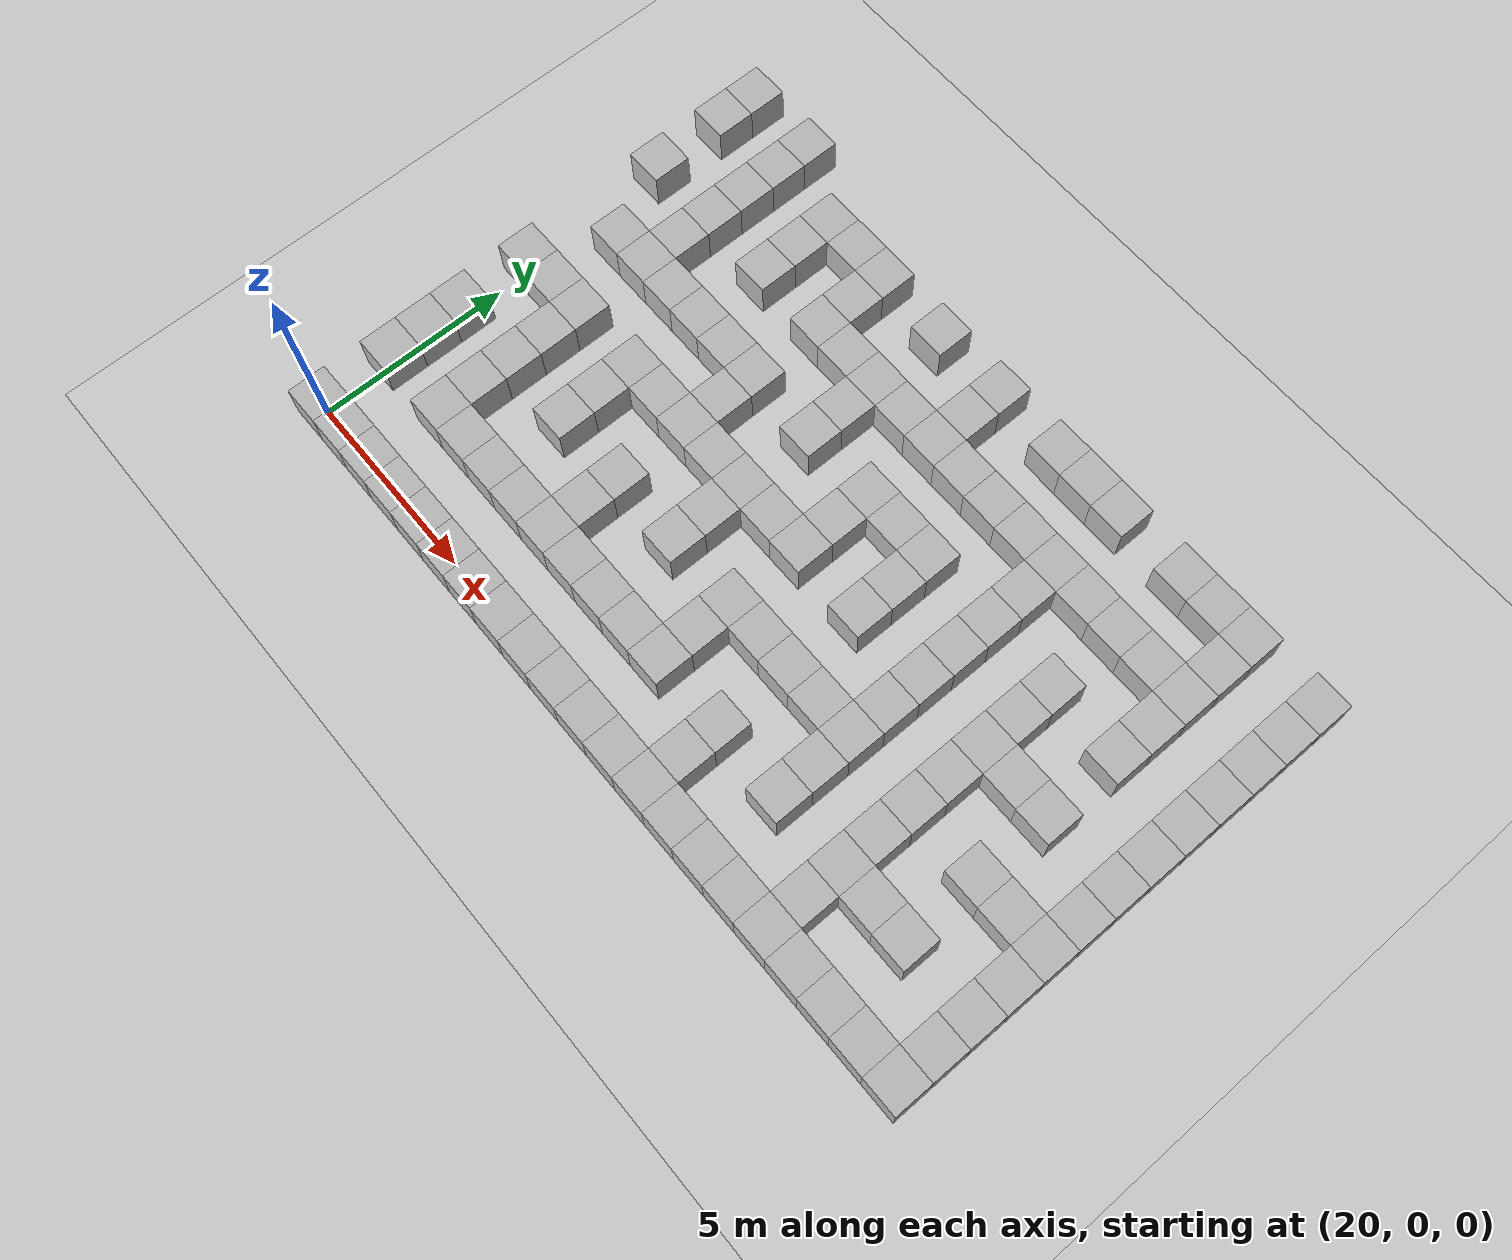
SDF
<sdf version="1.8">
 <world name="custom_maze">
  <model name="ground_plane">
   <static>1</static>
   <link name="link">
    <collision name="collision">
     <geometry><plane><normal>0 0 1</normal><size>100 100</size></plane></geometry>
    </collision>
    <visual name="visual">
     <geometry><plane><normal>0 0 1</normal><size>100 100</size></plane></geometry>
     <material>
      <ambient>0.8 0.8 0.8 1</ambient>
      <diffuse>0.8 0.8 0.8 1</diffuse>
      <specular>0.8 0.8 0.8 1</specular>
     </material>
     <plugin name="__default__" filename="__default__"/>
    </visual>
   </link>
   <plugin name="__default__" filename="__default__"/>
  </model>
  <model name="obstacles">
   <pose>0 0 0.5 0 0 0</pose>
   <static>true</static>
   <link name="wall6">
    <pose>34 3 0 0 0 0</pose>
    <static>true</static>
    <collision name="wall6_collision"><geometry><box><size>1 1 1</size></box></geometry></collision>
    <visual name="wall6_visual"><geometry><box><size>1 1 1</size></box></geometry></visual>
   </link>
   <link name="wall10">
    <pose>38 9 0 0 0 0</pose>
    <static>true</static>
    <collision name="wall10_collision"><geometry><box><size>1 1 1</size></box></geometry></collision>
    <visual name="wall10_visual"><geometry><box><size>1 1 1</size></box></geometry></visual>
   </link>
   <link name="wall12">
    <pose>30 4 0 0 0 0</pose>
    <static>true</static>
    <collision name="wall12_collision"><geometry><box><size>1 1 1</size></box></geometry></collision>
    <visual name="wall12_visual"><geometry><box><size>1 1 1</size></box></geometry></visual>
   </link>
   <link name="wall15">
    <pose>22 5 0 0 0 0</pose>
    <static>true</static>
    <collision name="wall15_collision"><geometry><box><size>1 1 1</size></box></geometry></collision>
    <visual name="wall15_visual"><geometry><box><size>1 1 1</size></box></geometry></visual>
   </link>
   <link name="wall19">
    <pose>26 11 0 0 0 0</pose>
    <static>true</static>
    <collision name="wall19_collision"><geometry><box><size>1 1 1</size></box></geometry></collision>
    <visual name="wall19_visual"><geometry><box><size>1 1 1</size></box></geometry></visual>
   </link>
   <link name="wall34">
    <pose>40 8 0 0 0 0</pose>
    <static>true</static>
    <collision name="wall34_collision"><geometry><box><size>1 1 1</size></box></geometry></collision>
    <visual name="wall34_visual"><geometry><box><size>1 1 1</size></box></geometry></visual>
   </link>
   <link name="wall36">
    <pose>34 6 0 0 0 0</pose>
    <static>true</static>
    <collision name="wall36_collision"><geometry><box><size>1 1 1</size></box></geometry></collision>
    <visual name="wall36_visual"><geometry><box><size>1 1 1</size></box></geometry></visual>
   </link>
   <link name="wall41">
    <pose>21 8 0 0 0 0</pose>
    <static>true</static>
    <collision name="wall41_collision"><geometry><box><size>1 1 1</size></box></geometry></collision>
    <visual name="wall41_visual"><geometry><box><size>1 1 1</size></box></geometry></visual>
   </link>
   <link name="wall48">
    <pose>22 8 0 0 0 0</pose>
    <static>true</static>
    <collision name="wall48_collision"><geometry><box><size>1 1 1</size></box></geometry></collision>
    <visual name="wall48_visual"><geometry><box><size>1 1 1</size></box></geometry></visual>
   </link>
   <link name="wall59">
    <pose>36 5 0 0 0 0</pose>
    <static>true</static>
    <collision name="wall59_collision"><geometry><box><size>1 1 1</size></box></geometry></collision>
    <visual name="wall59_visual"><geometry><box><size>1 1 1</size></box></geometry></visual>
   </link>
   <link name="wall61">
    <pose>29 2 0 0 0 0</pose>
    <static>true</static>
    <collision name="wall61_collision"><geometry><box><size>1 1 1</size></box></geometry></collision>
    <visual name="wall61_visual"><geometry><box><size>1 1 1</size></box></geometry></visual>
   </link>
   <link name="wall62">
    <pose>40 11 0 0 0 0</pose>
    <static>true</static>
    <collision name="wall62_collision"><geometry><box><size>1 1 1</size></box></geometry></collision>
    <visual name="wall62_visual"><geometry><box><size>1 1 1</size></box></geometry></visual>
   </link>
   <link name="wall67">
    <pose>32 12 0 0 0 0</pose>
    <static>true</static>
    <collision name="wall67_collision"><geometry><box><size>1 1 1</size></box></geometry></collision>
    <visual name="wall67_visual"><geometry><box><size>1 1 1</size></box></geometry></visual>
   </link>
   <link name="wall68">
    <pose>24 8 0 0 0 0</pose>
    <static>true</static>
    <collision name="wall68_collision"><geometry><box><size>1 1 1</size></box></geometry></collision>
    <visual name="wall68_visual"><geometry><box><size>1 1 1</size></box></geometry></visual>
   </link>
   <link name="wall82">
    <pose>32 2 0 0 0 0</pose>
    <static>true</static>
    <collision name="wall82_collision"><geometry><box><size>1 1 1</size></box></geometry></collision>
    <visual name="wall82_visual"><geometry><box><size>1 1 1</size></box></geometry></visual>
   </link>
   <link name="wall84">
    <pose>28 4 0 0 0 0</pose>
    <static>true</static>
    <collision name="wall84_collision"><geometry><box><size>1 1 1</size></box></geometry></collision>
    <visual name="wall84_visual"><geometry><box><size>1 1 1</size></box></geometry></visual>
   </link>
   <link name="wall92">
    <pose>24 11 0 0 0 0</pose>
    <static>true</static>
    <collision name="wall92_collision"><geometry><box><size>1 1 1</size></box></geometry></collision>
    <visual name="wall92_visual"><geometry><box><size>1 1 1</size></box></geometry></visual>
   </link>
   <link name="wall103">
    <pose>38 8 0 0 0 0</pose>
    <static>true</static>
    <collision name="wall103_collision"><geometry><box><size>1 1 1</size></box></geometry></collision>
    <visual name="wall103_visual"><geometry><box><size>1 1 1</size></box></geometry></visual>
   </link>
   <link name="wall104">
    <pose>30 3 0 0 0 0</pose>
    <static>true</static>
    <collision name="wall104_collision"><geometry><box><size>1 1 1</size></box></geometry></collision>
    <visual name="wall104_visual"><geometry><box><size>1 1 1</size></box></geometry></visual>
   </link>
   <link name="wall108">
    <pose>31 4 0 0 0 0</pose>
    <static>true</static>
    <collision name="wall108_collision"><geometry><box><size>1 1 1</size></box></geometry></collision>
    <visual name="wall108_visual"><geometry><box><size>1 1 1</size></box></geometry></visual>
   </link>
   <link name="wall109">
    <pose>23 0 0 0 0 0</pose>
    <static>true</static>
    <collision name="wall109_collision"><geometry><box><size>1 1 1</size></box></geometry></collision>
    <visual name="wall109_visual"><geometry><box><size>1 1 1</size></box></geometry></visual>
   </link>
   <link name="wall112">
    <pose>26 10 0 0 0 0</pose>
    <static>true</static>
    <collision name="wall112_collision"><geometry><box><size>1 1 1</size></box></geometry></collision>
    <visual name="wall112_visual"><geometry><box><size>1 1 1</size></box></geometry></visual>
   </link>
   <link name="wall125">
    <pose>34 5 0 0 0 0</pose>
    <static>true</static>
    <collision name="wall125_collision"><geometry><box><size>1 1 1</size></box></geometry></collision>
    <visual name="wall125_visual"><geometry><box><size>1 1 1</size></box></geometry></visual>
   </link>
   <link name="wall127">
    <pose>37 10 0 0 0 0</pose>
    <static>true</static>
    <collision name="wall127_collision"><geometry><box><size>1 1 1</size></box></geometry></collision>
    <visual name="wall127_visual"><geometry><box><size>1 1 1</size></box></geometry></visual>
   </link>
   <link name="wall130">
    <pose>26 0 0 0 0 0</pose>
    <static>true</static>
    <collision name="wall130_collision"><geometry><box><size>1 1 1</size></box></geometry></collision>
    <visual name="wall130_visual"><geometry><box><size>1 1 1</size></box></geometry></visual>
   </link>
   <link name="wall131">
    <pose>38 11 0 0 0 0</pose>
    <static>true</static>
    <collision name="wall131_collision"><geometry><box><size>1 1 1</size></box></geometry></collision>
    <visual name="wall131_visual"><geometry><box><size>1 1 1</size></box></geometry></visual>
   </link>
   <link name="wall133">
    <pose>30 6 0 0 0 0</pose>
    <static>true</static>
    <collision name="wall133_collision"><geometry><box><size>1 1 1</size></box></geometry></collision>
    <visual name="wall133_visual"><geometry><box><size>1 1 1</size></box></geometry></visual>
   </link>
   <link name="wall145">
    <pose>37 0 0 0 0 0</pose>
    <static>true</static>
    <collision name="wall145_collision"><geometry><box><size>1 1 1</size></box></geometry></collision>
    <visual name="wall145_visual"><geometry><box><size>1 1 1</size></box></geometry></visual>
   </link>
   <link name="wall150">
    <pose>40 10 0 0 0 0</pose>
    <static>true</static>
    <collision name="wall150_collision"><geometry><box><size>1 1 1</size></box></geometry></collision>
    <visual name="wall150_visual"><geometry><box><size>1 1 1</size></box></geometry></visual>
   </link>
   <link name="wall165">
    <pose>40 0 0 0 0 0</pose>
    <static>true</static>
    <collision name="wall165_collision"><geometry><box><size>1 1 1</size></box></geometry></collision>
    <visual name="wall165_visual"><geometry><box><size>1 1 1</size></box></geometry></visual>
   </link>
   <link name="wall172">
    <pose>36 7 0 0 0 0</pose>
    <static>true</static>
    <collision name="wall172_collision"><geometry><box><size>1 1 1</size></box></geometry></collision>
    <visual name="wall172_visual"><geometry><box><size>1 1 1</size></box></geometry></visual>
   </link>
   <link name="wall174">
    <pose>21 0 0 0 0 0</pose>
    <static>true</static>
    <collision name="wall174_collision"><geometry><box><size>1 1 1</size></box></geometry></collision>
    <visual name="wall174_visual"><geometry><box><size>1 1 1</size></box></geometry></visual>
   </link>
   <link name="wall181">
    <pose>24 10 0 0 0 0</pose>
    <static>true</static>
    <collision name="wall181_collision"><geometry><box><size>1 1 1</size></box></geometry></collision>
    <visual name="wall181_visual"><geometry><box><size>1 1 1</size></box></geometry></visual>
   </link>
   <link name="wall195">
    <pose>32 4 0 0 0 0</pose>
    <static>true</static>
    <collision name="wall195_collision"><geometry><box><size>1 1 1</size></box></geometry></collision>
    <visual name="wall195_visual"><geometry><box><size>1 1 1</size></box></geometry></visual>
   </link>
   <link name="wall196">
    <pose>24 0 0 0 0 0</pose>
    <static>true</static>
    <collision name="wall196_collision"><geometry><box><size>1 1 1</size></box></geometry></collision>
    <visual name="wall196_visual"><geometry><box><size>1 1 1</size></box></geometry></visual>
   </link>
   <link name="wall200">
    <pose>27 10 0 0 0 0</pose>
    <static>true</static>
    <collision name="wall200_collision"><geometry><box><size>1 1 1</size></box></geometry></collision>
    <visual name="wall200_visual"><geometry><box><size>1 1 1</size></box></geometry></visual>
   </link>
   <link name="wall213">
    <pose>38 10 0 0 0 0</pose>
    <static>true</static>
    <collision name="wall213_collision"><geometry><box><size>1 1 1</size></box></geometry></collision>
    <visual name="wall213_visual"><geometry><box><size>1 1 1</size></box></geometry></visual>
   </link>
   <link name="wall215">
    <pose>27 0 0 0 0 0</pose>
    <static>true</static>
    <collision name="wall215_collision"><geometry><box><size>1 1 1</size></box></geometry></collision>
    <visual name="wall215_visual"><geometry><box><size>1 1 1</size></box></geometry></visual>
   </link>
   <link name="wall218">
    <pose>23 2 0 0 0 0</pose>
    <static>true</static>
    <collision name="wall218_collision"><geometry><box><size>1 1 1</size></box></geometry></collision>
    <visual name="wall218_visual"><geometry><box><size>1 1 1</size></box></geometry></visual>
   </link>
   <link name="wall220">
    <pose>26 12 0 0 0 0</pose>
    <static>true</static>
    <collision name="wall220_collision"><geometry><box><size>1 1 1</size></box></geometry></collision>
    <visual name="wall220_visual"><geometry><box><size>1 1 1</size></box></geometry></visual>
   </link>
   <link name="wall229">
    <pose>38 0 0 0 0 0</pose>
    <static>true</static>
    <collision name="wall229_collision"><geometry><box><size>1 1 1</size></box></geometry></collision>
    <visual name="wall229_visual"><geometry><box><size>1 1 1</size></box></geometry></visual>
   </link>
   <link name="wall235">
    <pose>34 7 0 0 0 0</pose>
    <static>true</static>
    <collision name="wall235_collision"><geometry><box><size>1 1 1</size></box></geometry></collision>
    <visual name="wall235_visual"><geometry><box><size>1 1 1</size></box></geometry></visual>
   </link>
   <link name="wall236">
    <pose>37 12 0 0 0 0</pose>
    <static>true</static>
    <collision name="wall236_collision"><geometry><box><size>1 1 1</size></box></geometry></collision>
    <visual name="wall236_visual"><geometry><box><size>1 1 1</size></box></geometry></visual>
   </link>
   <link name="wall239">
    <pose>26 2 0 0 0 0</pose>
    <static>true</static>
    <collision name="wall239_collision"><geometry><box><size>1 1 1</size></box></geometry></collision>
    <visual name="wall239_visual"><geometry><box><size>1 1 1</size></box></geometry></visual>
   </link>
   <link name="wall244">
    <pose>22 9 0 0 0 0</pose>
    <static>true</static>
    <collision name="wall244_collision"><geometry><box><size>1 1 1</size></box></geometry></collision>
    <visual name="wall244_visual"><geometry><box><size>1 1 1</size></box></geometry></visual>
   </link>
   <link name="wall254">
    <pose>37 2 0 0 0 0</pose>
    <static>true</static>
    <collision name="wall254_collision"><geometry><box><size>1 1 1</size></box></geometry></collision>
    <visual name="wall254_visual"><geometry><box><size>1 1 1</size></box></geometry></visual>
   </link>
   <link name="wall258">
    <pose>40 12 0 0 0 0</pose>
    <static>true</static>
    <collision name="wall258_collision"><geometry><box><size>1 1 1</size></box></geometry></collision>
    <visual name="wall258_visual"><geometry><box><size>1 1 1</size></box></geometry></visual>
   </link>
   <link name="wall274">
    <pose>40 2 0 0 0 0</pose>
    <static>true</static>
    <collision name="wall274_collision"><geometry><box><size>1 1 1</size></box></geometry></collision>
    <visual name="wall274_visual"><geometry><box><size>1 1 1</size></box></geometry></visual>
   </link>
   <link name="wall281">
    <pose>28 5 0 0 0 0</pose>
    <static>true</static>
    <collision name="wall281_collision"><geometry><box><size>1 1 1</size></box></geometry></collision>
    <visual name="wall281_visual"><geometry><box><size>1 1 1</size></box></geometry></visual>
   </link>
   <link name="wall283">
    <pose>29 6 0 0 0 0</pose>
    <static>true</static>
    <collision name="wall283_collision"><geometry><box><size>1 1 1</size></box></geometry></collision>
    <visual name="wall283_visual"><geometry><box><size>1 1 1</size></box></geometry></visual>
   </link>
   <link name="wall288">
    <pose>24 12 0 0 0 0</pose>
    <static>true</static>
    <collision name="wall288_collision"><geometry><box><size>1 1 1</size></box></geometry></collision>
    <visual name="wall288_visual"><geometry><box><size>1 1 1</size></box></geometry></visual>
   </link>
   <link name="wall305">
    <pose>32 6 0 0 0 0</pose>
    <static>true</static>
    <collision name="wall305_collision"><geometry><box><size>1 1 1</size></box></geometry></collision>
    <visual name="wall305_visual"><geometry><box><size>1 1 1</size></box></geometry></visual>
   </link>
   <link name="wall306">
    <pose>24 2 0 0 0 0</pose>
    <static>true</static>
    <collision name="wall306_collision"><geometry><box><size>1 1 1</size></box></geometry></collision>
    <visual name="wall306_visual"><geometry><box><size>1 1 1</size></box></geometry></visual>
   </link>
   <link name="wall323">
    <pose>38 12 0 0 0 0</pose>
    <static>true</static>
    <collision name="wall323_collision"><geometry><box><size>1 1 1</size></box></geometry></collision>
    <visual name="wall323_visual"><geometry><box><size>1 1 1</size></box></geometry></visual>
   </link>
   <link name="wall325">
    <pose>27 2 0 0 0 0</pose>
    <static>true</static>
    <collision name="wall325_collision"><geometry><box><size>1 1 1</size></box></geometry></collision>
    <visual name="wall325_visual"><geometry><box><size>1 1 1</size></box></geometry></visual>
   </link>
   <link name="wall326">
    <pose>30 7 0 0 0 0</pose>
    <static>true</static>
    <collision name="wall326_collision"><geometry><box><size>1 1 1</size></box></geometry></collision>
    <visual name="wall326_visual"><geometry><box><size>1 1 1</size></box></geometry></visual>
   </link>
   <link name="wall337">
    <pose>38 2 0 0 0 0</pose>
    <static>true</static>
    <collision name="wall337_collision"><geometry><box><size>1 1 1</size></box></geometry></collision>
    <visual name="wall337_visual"><geometry><box><size>1 1 1</size></box></geometry></visual>
   </link>
   <link name="wall345">
    <pose>34 9 0 0 0 0</pose>
    <static>true</static>
    <collision name="wall345_collision"><geometry><box><size>1 1 1</size></box></geometry></collision>
    <visual name="wall345_visual"><geometry><box><size>1 1 1</size></box></geometry></visual>
   </link>
   <link name="wall348">
    <pose>26 4 0 0 0 0</pose>
    <static>true</static>
    <collision name="wall348_collision"><geometry><box><size>1 1 1</size></box></geometry></collision>
    <visual name="wall348_visual"><geometry><box><size>1 1 1</size></box></geometry></visual>
   </link>
   <link name="wall354">
    <pose>22 11 0 0 0 0</pose>
    <static>true</static>
    <collision name="wall354_collision"><geometry><box><size>1 1 1</size></box></geometry></collision>
    <visual name="wall354_visual"><geometry><box><size>1 1 1</size></box></geometry></visual>
   </link>
   <link name="wall356">
    <pose>40 1 0 0 0 0</pose>
    <static>true</static>
    <collision name="wall356_collision"><geometry><box><size>1 1 1</size></box></geometry></collision>
    <visual name="wall356_visual"><geometry><box><size>1 1 1</size></box></geometry></visual>
   </link>
   <link name="wall365">
    <pose>36 8 0 0 0 0</pose>
    <static>true</static>
    <collision name="wall365_collision"><geometry><box><size>1 1 1</size></box></geometry></collision>
    <visual name="wall365_visual"><geometry><box><size>1 1 1</size></box></geometry></visual>
   </link>
   <link name="wall382">
    <pose>40 4 0 0 0 0</pose>
    <static>true</static>
    <collision name="wall382_collision"><geometry><box><size>1 1 1</size></box></geometry></collision>
    <visual name="wall382_visual"><geometry><box><size>1 1 1</size></box></geometry></visual>
   </link>
   <link name="wall387">
    <pose>35 10 0 0 0 0</pose>
    <static>true</static>
    <collision name="wall387_collision"><geometry><box><size>1 1 1</size></box></geometry></collision>
    <visual name="wall387_visual"><geometry><box><size>1 1 1</size></box></geometry></visual>
   </link>
   <link name="wall406">
    <pose>35 0 0 0 0 0</pose>
    <static>true</static>
    <collision name="wall406_collision"><geometry><box><size>1 1 1</size></box></geometry></collision>
    <visual name="wall406_visual"><geometry><box><size>1 1 1</size></box></geometry></visual>
   </link>
   <link name="wall414">
    <pose>24 4 0 0 0 0</pose>
    <static>true</static>
    <collision name="wall414_collision"><geometry><box><size>1 1 1</size></box></geometry></collision>
    <visual name="wall414_visual"><geometry><box><size>1 1 1</size></box></geometry></visual>
   </link>
   <link name="wall436">
    <pose>34 8 0 0 0 0</pose>
    <static>true</static>
    <collision name="wall436_collision"><geometry><box><size>1 1 1</size></box></geometry></collision>
    <visual name="wall436_visual"><geometry><box><size>1 1 1</size></box></geometry></visual>
   </link>
   <link name="wall440">
    <pose>26 3 0 0 0 0</pose>
    <static>true</static>
    <collision name="wall440_collision"><geometry><box><size>1 1 1</size></box></geometry></collision>
    <visual name="wall440_visual"><geometry><box><size>1 1 1</size></box></geometry></visual>
   </link>
   <link name="wall446">
    <pose>22 10 0 0 0 0</pose>
    <static>true</static>
    <collision name="wall446_collision"><geometry><box><size>1 1 1</size></box></geometry></collision>
    <visual name="wall446_visual"><geometry><box><size>1 1 1</size></box></geometry></visual>
   </link>
   <link name="wall455">
    <pose>38 4 0 0 0 0</pose>
    <static>true</static>
    <collision name="wall455_collision"><geometry><box><size>1 1 1</size></box></geometry></collision>
    <visual name="wall455_visual"><geometry><box><size>1 1 1</size></box></geometry></visual>
   </link>
   <link name="wall457">
    <pose>33 10 0 0 0 0</pose>
    <static>true</static>
    <collision name="wall457_collision"><geometry><box><size>1 1 1</size></box></geometry></collision>
    <visual name="wall457_visual"><geometry><box><size>1 1 1</size></box></geometry></visual>
   </link>
   <link name="wall458">
    <pose>25 6 0 0 0 0</pose>
    <static>true</static>
    <collision name="wall458_collision"><geometry><box><size>1 1 1</size></box></geometry></collision>
    <visual name="wall458_visual"><geometry><box><size>1 1 1</size></box></geometry></visual>
   </link>
   <link name="wall461">
    <pose>22 0 0 0 0 0</pose>
    <static>true</static>
    <collision name="wall461_collision"><geometry><box><size>1 1 1</size></box></geometry></collision>
    <visual name="wall461_visual"><geometry><box><size>1 1 1</size></box></geometry></visual>
   </link>
   <link name="wall464">
    <pose>26 6 0 0 0 0</pose>
    <static>true</static>
    <collision name="wall464_collision"><geometry><box><size>1 1 1</size></box></geometry></collision>
    <visual name="wall464_visual"><geometry><box><size>1 1 1</size></box></geometry></visual>
   </link>
   <link name="wall470">
    <pose>22 13 0 0 0 0</pose>
    <static>true</static>
    <collision name="wall470_collision"><geometry><box><size>1 1 1</size></box></geometry></collision>
    <visual name="wall470_visual"><geometry><box><size>1 1 1</size></box></geometry></visual>
   </link>
   <link name="wall473">
    <pose>40 3 0 0 0 0</pose>
    <static>true</static>
    <collision name="wall473_collision"><geometry><box><size>1 1 1</size></box></geometry></collision>
    <visual name="wall473_visual"><geometry><box><size>1 1 1</size></box></geometry></visual>
   </link>
   <link name="wall476">
    <pose>33 0 0 0 0 0</pose>
    <static>true</static>
    <collision name="wall476_collision"><geometry><box><size>1 1 1</size></box></geometry></collision>
    <visual name="wall476_visual"><geometry><box><size>1 1 1</size></box></geometry></visual>
   </link>
   <link name="wall482">
    <pose>36 10 0 0 0 0</pose>
    <static>true</static>
    <collision name="wall482_collision"><geometry><box><size>1 1 1</size></box></geometry></collision>
    <visual name="wall482_visual"><geometry><box><size>1 1 1</size></box></geometry></visual>
   </link>
   <link name="wall483">
    <pose>28 6 0 0 0 0</pose>
    <static>true</static>
    <collision name="wall483_collision"><geometry><box><size>1 1 1</size></box></geometry></collision>
    <visual name="wall483_visual"><geometry><box><size>1 1 1</size></box></geometry></visual>
   </link>
   <link name="wall500">
    <pose>36 0 0 0 0 0</pose>
    <static>true</static>
    <collision name="wall500_collision"><geometry><box><size>1 1 1</size></box></geometry></collision>
    <visual name="wall500_visual"><geometry><box><size>1 1 1</size></box></geometry></visual>
   </link>
   <link name="wall502">
    <pose>40 6 0 0 0 0</pose>
    <static>true</static>
    <collision name="wall502_collision"><geometry><box><size>1 1 1</size></box></geometry></collision>
    <visual name="wall502_visual"><geometry><box><size>1 1 1</size></box></geometry></visual>
   </link>
   <link name="wall508">
    <pose>32 7 0 0 0 0</pose>
    <static>true</static>
    <collision name="wall508_collision"><geometry><box><size>1 1 1</size></box></geometry></collision>
    <visual name="wall508_visual"><geometry><box><size>1 1 1</size></box></geometry></visual>
   </link>
   <link name="wall512">
    <pose>28 9 0 0 0 0</pose>
    <static>true</static>
    <collision name="wall512_collision"><geometry><box><size>1 1 1</size></box></geometry></collision>
    <visual name="wall512_visual"><geometry><box><size>1 1 1</size></box></geometry></visual>
   </link>
   <link name="wall515">
    <pose>20 10 0 0 0 0</pose>
    <static>true</static>
    <collision name="wall515_collision"><geometry><box><size>1 1 1</size></box></geometry></collision>
    <visual name="wall515_visual"><geometry><box><size>1 1 1</size></box></geometry></visual>
   </link>
   <link name="wall523">
    <pose>39 0 0 0 0 0</pose>
    <static>true</static>
    <collision name="wall523_collision"><geometry><box><size>1 1 1</size></box></geometry></collision>
    <visual name="wall523_visual"><geometry><box><size>1 1 1</size></box></geometry></visual>
   </link>
   <link name="wall527">
    <pose>30 8 0 0 0 0</pose>
    <static>true</static>
    <collision name="wall527_collision"><geometry><box><size>1 1 1</size></box></geometry></collision>
    <visual name="wall527_visual"><geometry><box><size>1 1 1</size></box></geometry></visual>
   </link>
   <link name="wall530">
    <pose>20 0 0 0 0 0</pose>
    <static>true</static>
    <collision name="wall530_collision"><geometry><box><size>1 1 1</size></box></geometry></collision>
    <visual name="wall530_visual"><geometry><box><size>1 1 1</size></box></geometry></visual>
   </link>
   <link name="wall533">
    <pose>24 6 0 0 0 0</pose>
    <static>true</static>
    <collision name="wall533_collision"><geometry><box><size>1 1 1</size></box></geometry></collision>
    <visual name="wall533_visual"><geometry><box><size>1 1 1</size></box></geometry></visual>
   </link>
   <link name="wall541">
    <pose>20 13 0 0 0 0</pose>
    <static>true</static>
    <collision name="wall541_collision"><geometry><box><size>1 1 1</size></box></geometry></collision>
    <visual name="wall541_visual"><geometry><box><size>1 1 1</size></box></geometry></visual>
   </link>
   <link name="wall552">
    <pose>34 10 0 0 0 0</pose>
    <static>true</static>
    <collision name="wall552_collision"><geometry><box><size>1 1 1</size></box></geometry></collision>
    <visual name="wall552_visual"><geometry><box><size>1 1 1</size></box></geometry></visual>
   </link>
   <link name="wall556">
    <pose>27 6 0 0 0 0</pose>
    <static>true</static>
    <collision name="wall556_collision"><geometry><box><size>1 1 1</size></box></geometry></collision>
    <visual name="wall556_visual"><geometry><box><size>1 1 1</size></box></geometry></visual>
   </link>
   <link name="wall559">
    <pose>30 11 0 0 0 0</pose>
    <static>true</static>
    <collision name="wall559_collision"><geometry><box><size>1 1 1</size></box></geometry></collision>
    <visual name="wall559_visual"><geometry><box><size>1 1 1</size></box></geometry></visual>
   </link>
   <link name="wall563">
    <pose>22 12 0 0 0 0</pose>
    <static>true</static>
    <collision name="wall563_collision"><geometry><box><size>1 1 1</size></box></geometry></collision>
    <visual name="wall563_visual"><geometry><box><size>1 1 1</size></box></geometry></visual>
   </link>
   <link name="wall570">
    <pose>34 0 0 0 0 0</pose>
    <static>true</static>
    <collision name="wall570_collision"><geometry><box><size>1 1 1</size></box></geometry></collision>
    <visual name="wall570_visual"><geometry><box><size>1 1 1</size></box></geometry></visual>
   </link>
   <link name="wall573">
    <pose>33 12 0 0 0 0</pose>
    <static>true</static>
    <collision name="wall573_collision"><geometry><box><size>1 1 1</size></box></geometry></collision>
    <visual name="wall573_visual"><geometry><box><size>1 1 1</size></box></geometry></visual>
   </link>
   <link name="wall574">
    <pose>25 8 0 0 0 0</pose>
    <static>true</static>
    <collision name="wall574_collision"><geometry><box><size>1 1 1</size></box></geometry></collision>
    <visual name="wall574_visual"><geometry><box><size>1 1 1</size></box></geometry></visual>
   </link>
   <link name="wall577">
    <pose>22 2 0 0 0 0</pose>
    <static>true</static>
    <collision name="wall577_collision"><geometry><box><size>1 1 1</size></box></geometry></collision>
    <visual name="wall577_visual"><geometry><box><size>1 1 1</size></box></geometry></visual>
   </link>
   <link name="wall586">
    <pose>40 5 0 0 0 0</pose>
    <static>true</static>
    <collision name="wall586_collision"><geometry><box><size>1 1 1</size></box></geometry></collision>
    <visual name="wall586_visual"><geometry><box><size>1 1 1</size></box></geometry></visual>
   </link>
   <link name="wall593">
    <pose>36 12 0 0 0 0</pose>
    <static>true</static>
    <collision name="wall593_collision"><geometry><box><size>1 1 1</size></box></geometry></collision>
    <visual name="wall593_visual"><geometry><box><size>1 1 1</size></box></geometry></visual>
   </link>
   <link name="wall594">
    <pose>28 8 0 0 0 0</pose>
    <static>true</static>
    <collision name="wall594_collision"><geometry><box><size>1 1 1</size></box></geometry></collision>
    <visual name="wall594_visual"><geometry><box><size>1 1 1</size></box></geometry></visual>
   </link>
   <link name="wall610">
    <pose>36 2 0 0 0 0</pose>
    <static>true</static>
    <collision name="wall610_collision"><geometry><box><size>1 1 1</size></box></geometry></collision>
    <visual name="wall610_visual"><geometry><box><size>1 1 1</size></box></geometry></visual>
   </link>
   <link name="wall613">
    <pose>31 8 0 0 0 0</pose>
    <static>true</static>
    <collision name="wall613_collision"><geometry><box><size>1 1 1</size></box></geometry></collision>
    <visual name="wall613_visual"><geometry><box><size>1 1 1</size></box></geometry></visual>
   </link>
   <link name="wall617">
    <pose>24 5 0 0 0 0</pose>
    <static>true</static>
    <collision name="wall617_collision"><geometry><box><size>1 1 1</size></box></geometry></collision>
    <visual name="wall617_visual"><geometry><box><size>1 1 1</size></box></geometry></visual>
   </link>
   <link name="wall622">
    <pose>20 12 0 0 0 0</pose>
    <static>true</static>
    <collision name="wall622_collision"><geometry><box><size>1 1 1</size></box></geometry></collision>
    <visual name="wall622_visual"><geometry><box><size>1 1 1</size></box></geometry></visual>
   </link>
   <link name="wall639">
    <pose>30 10 0 0 0 0</pose>
    <static>true</static>
    <collision name="wall639_collision"><geometry><box><size>1 1 1</size></box></geometry></collision>
    <visual name="wall639_visual"><geometry><box><size>1 1 1</size></box></geometry></visual>
   </link>
   <link name="wall642">
    <pose>20 2 0 0 0 0</pose>
    <static>true</static>
    <collision name="wall642_collision"><geometry><box><size>1 1 1</size></box></geometry></collision>
    <visual name="wall642_visual"><geometry><box><size>1 1 1</size></box></geometry></visual>
   </link>
   <link name="wall661">
    <pose>30 0 0 0 0 0</pose>
    <static>true</static>
    <collision name="wall661_collision"><geometry><box><size>1 1 1</size></box></geometry></collision>
    <visual name="wall661_visual"><geometry><box><size>1 1 1</size></box></geometry></visual>
   </link>
   <link name="wall665">
    <pose>34 12 0 0 0 0</pose>
    <static>true</static>
    <collision name="wall665_collision"><geometry><box><size>1 1 1</size></box></geometry></collision>
    <visual name="wall665_visual"><geometry><box><size>1 1 1</size></box></geometry></visual>
   </link>
   <link name="wall668">
    <pose>26 7 0 0 0 0</pose>
    <static>true</static>
    <collision name="wall668_collision"><geometry><box><size>1 1 1</size></box></geometry></collision>
    <visual name="wall668_visual"><geometry><box><size>1 1 1</size></box></geometry></visual>
   </link>
   <link name="wall686">
    <pose>34 2 0 0 0 0</pose>
    <static>true</static>
    <collision name="wall686_collision"><geometry><box><size>1 1 1</size></box></geometry></collision>
    <visual name="wall686_visual"><geometry><box><size>1 1 1</size></box></geometry></visual>
   </link>
   <link name="wall696">
    <pose>22 4 0 0 0 0</pose>
    <static>true</static>
    <collision name="wall696_collision"><geometry><box><size>1 1 1</size></box></geometry></collision>
    <visual name="wall696_visual"><geometry><box><size>1 1 1</size></box></geometry></visual>
   </link>
   <link name="wall704">
    <pose>36 1 0 0 0 0</pose>
    <static>true</static>
    <collision name="wall704_collision"><geometry><box><size>1 1 1</size></box></geometry></collision>
    <visual name="wall704_visual"><geometry><box><size>1 1 1</size></box></geometry></visual>
   </link>
   <link name="wall707">
    <pose>40 7 0 0 0 0</pose>
    <static>true</static>
    <collision name="wall707_collision"><geometry><box><size>1 1 1</size></box></geometry></collision>
    <visual name="wall707_visual"><geometry><box><size>1 1 1</size></box></geometry></visual>
   </link>
   <link name="wall709">
    <pose>33 4 0 0 0 0</pose>
    <static>true</static>
    <collision name="wall709_collision"><geometry><box><size>1 1 1</size></box></geometry></collision>
    <visual name="wall709_visual"><geometry><box><size>1 1 1</size></box></geometry></visual>
   </link>
   <link name="wall711">
    <pose>25 0 0 0 0 0</pose>
    <static>true</static>
    <collision name="wall711_collision"><geometry><box><size>1 1 1</size></box></geometry></collision>
    <visual name="wall711_visual"><geometry><box><size>1 1 1</size></box></geometry></visual>
   </link>
   <link name="wall712">
    <pose>32 8 0 0 0 0</pose>
    <static>true</static>
    <collision name="wall712_collision"><geometry><box><size>1 1 1</size></box></geometry></collision>
    <visual name="wall712_visual"><geometry><box><size>1 1 1</size></box></geometry></visual>
   </link>
   <link name="wall717">
    <pose>28 10 0 0 0 0</pose>
    <static>true</static>
    <collision name="wall717_collision"><geometry><box><size>1 1 1</size></box></geometry></collision>
    <visual name="wall717_visual"><geometry><box><size>1 1 1</size></box></geometry></visual>
   </link>
   <link name="wall727">
    <pose>36 4 0 0 0 0</pose>
    <static>true</static>
    <collision name="wall727_collision"><geometry><box><size>1 1 1</size></box></geometry></collision>
    <visual name="wall727_visual"><geometry><box><size>1 1 1</size></box></geometry></visual>
   </link>
   <link name="wall728">
    <pose>28 0 0 0 0 0</pose>
    <static>true</static>
    <collision name="wall728_collision"><geometry><box><size>1 1 1</size></box></geometry></collision>
    <visual name="wall728_visual"><geometry><box><size>1 1 1</size></box></geometry></visual>
   </link>
   <link name="wall733">
    <pose>31 10 0 0 0 0</pose>
    <static>true</static>
    <collision name="wall733_collision"><geometry><box><size>1 1 1</size></box></geometry></collision>
    <visual name="wall733_visual"><geometry><box><size>1 1 1</size></box></geometry></visual>
   </link>
   <link name="wall752">
    <pose>39 4 0 0 0 0</pose>
    <static>true</static>
    <collision name="wall752_collision"><geometry><box><size>1 1 1</size></box></geometry></collision>
    <visual name="wall752_visual"><geometry><box><size>1 1 1</size></box></geometry></visual>
   </link>
   <link name="wall753">
    <pose>31 0 0 0 0 0</pose>
    <static>true</static>
    <collision name="wall753_collision"><geometry><box><size>1 1 1</size></box></geometry></collision>
    <visual name="wall753_visual"><geometry><box><size>1 1 1</size></box></geometry></visual>
   </link>
   <link name="wall756">
    <pose>32 1 0 0 0 0</pose>
    <static>true</static>
    <collision name="wall756_collision"><geometry><box><size>1 1 1</size></box></geometry></collision>
    <visual name="wall756_visual"><geometry><box><size>1 1 1</size></box></geometry></visual>
   </link>
   <link name="wall760">
    <pose>30 12 0 0 0 0</pose>
    <static>true</static>
    <collision name="wall760_collision"><geometry><box><size>1 1 1</size></box></geometry></collision>
    <visual name="wall760_visual"><geometry><box><size>1 1 1</size></box></geometry></visual>
   </link>
   <link name="wall763">
    <pose>20 4 0 0 0 0</pose>
    <static>true</static>
    <collision name="wall763_collision"><geometry><box><size>1 1 1</size></box></geometry></collision>
    <visual name="wall763_visual"><geometry><box><size>1 1 1</size></box></geometry></visual>
   </link>
   <link name="wall774">
    <pose>37 6 0 0 0 0</pose>
    <static>true</static>
    <collision name="wall774_collision"><geometry><box><size>1 1 1</size></box></geometry></collision>
    <visual name="wall774_visual"><geometry><box><size>1 1 1</size></box></geometry></visual>
   </link>
   <link name="wall780">
    <pose>30 2 0 0 0 0</pose>
    <static>true</static>
    <collision name="wall780_collision"><geometry><box><size>1 1 1</size></box></geometry></collision>
    <visual name="wall780_visual"><geometry><box><size>1 1 1</size></box></geometry></visual>
   </link>
   <link name="wall782">
    <pose>22 3 0 0 0 0</pose>
    <static>true</static>
    <collision name="wall782_collision"><geometry><box><size>1 1 1</size></box></geometry></collision>
    <visual name="wall782_visual"><geometry><box><size>1 1 1</size></box></geometry></visual>
   </link>
   <link name="wall800">
    <pose>34 4 0 0 0 0</pose>
    <static>true</static>
    <collision name="wall800_collision"><geometry><box><size>1 1 1</size></box></geometry></collision>
    <visual name="wall800_visual"><geometry><box><size>1 1 1</size></box></geometry></visual>
   </link>
   <link name="wall802">
    <pose>29 10 0 0 0 0</pose>
    <static>true</static>
    <collision name="wall802_collision"><geometry><box><size>1 1 1</size></box></geometry></collision>
    <visual name="wall802_visual"><geometry><box><size>1 1 1</size></box></geometry></visual>
   </link>
   <link name="wall803">
    <pose>21 6 0 0 0 0</pose>
    <static>true</static>
    <collision name="wall803_collision"><geometry><box><size>1 1 1</size></box></geometry></collision>
    <visual name="wall803_visual"><geometry><box><size>1 1 1</size></box></geometry></visual>
   </link>
   <link name="wall806">
    <pose>25 12 0 0 0 0</pose>
    <static>true</static>
    <collision name="wall806_collision"><geometry><box><size>1 1 1</size></box></geometry></collision>
    <visual name="wall806_visual"><geometry><box><size>1 1 1</size></box></geometry></visual>
   </link>
   <link name="wall809">
    <pose>22 6 0 0 0 0</pose>
    <static>true</static>
    <collision name="wall809_collision"><geometry><box><size>1 1 1</size></box></geometry></collision>
    <visual name="wall809_visual"><geometry><box><size>1 1 1</size></box></geometry></visual>
   </link>
   <link name="wall817">
    <pose>36 3 0 0 0 0</pose>
    <static>true</static>
    <collision name="wall817_collision"><geometry><box><size>1 1 1</size></box></geometry></collision>
    <visual name="wall817_visual"><geometry><box><size>1 1 1</size></box></geometry></visual>
   </link>
   <link name="wall820">
    <pose>29 0 0 0 0 0</pose>
    <static>true</static>
    <collision name="wall820_collision"><geometry><box><size>1 1 1</size></box></geometry></collision>
    <visual name="wall820_visual"><geometry><box><size>1 1 1</size></box></geometry></visual>
   </link>
   <link name="wall821">
    <pose>40 9 0 0 0 0</pose>
    <static>true</static>
    <collision name="wall821_collision"><geometry><box><size>1 1 1</size></box></geometry></collision>
    <visual name="wall821_visual"><geometry><box><size>1 1 1</size></box></geometry></visual>
   </link>
   <link name="wall824">
    <pose>25 2 0 0 0 0</pose>
    <static>true</static>
    <collision name="wall824_collision"><geometry><box><size>1 1 1</size></box></geometry></collision>
    <visual name="wall824_visual"><geometry><box><size>1 1 1</size></box></geometry></visual>
   </link>
   <link name="wall826">
    <pose>32 10 0 0 0 0</pose>
    <static>true</static>
    <collision name="wall826_collision"><geometry><box><size>1 1 1</size></box></geometry></collision>
    <visual name="wall826_visual"><geometry><box><size>1 1 1</size></box></geometry></visual>
   </link>
   <link name="wall830">
    <pose>28 12 0 0 0 0</pose>
    <static>true</static>
    <collision name="wall830_collision"><geometry><box><size>1 1 1</size></box></geometry></collision>
    <visual name="wall830_visual"><geometry><box><size>1 1 1</size></box></geometry></visual>
   </link>
   <link name="wall840">
    <pose>32 0 0 0 0 0</pose>
    <static>true</static>
    <collision name="wall840_collision"><geometry><box><size>1 1 1</size></box></geometry></collision>
    <visual name="wall840_visual"><geometry><box><size>1 1 1</size></box></geometry></visual>
   </link>
   <link name="wall842">
    <pose>36 6 0 0 0 0</pose>
    <static>true</static>
    <collision name="wall842_collision"><geometry><box><size>1 1 1</size></box></geometry></collision>
    <visual name="wall842_visual"><geometry><box><size>1 1 1</size></box></geometry></visual>
   </link>
   <link name="wall843">
    <pose>28 2 0 0 0 0</pose>
    <static>true</static>
    <collision name="wall843_collision"><geometry><box><size>1 1 1</size></box></geometry></collision>
    <visual name="wall843_visual"><geometry><box><size>1 1 1</size></box></geometry></visual>
   </link>
   <link name="wall847">
    <pose>20 3 0 0 0 0</pose>
    <static>true</static>
    <collision name="wall847_collision"><geometry><box><size>1 1 1</size></box></geometry></collision>
    <visual name="wall847_visual"><geometry><box><size>1 1 1</size></box></geometry></visual>
   </link>
   <link name="wall848">
    <pose>23 8 0 0 0 0</pose>
    <static>true</static>
    <collision name="wall848_collision"><geometry><box><size>1 1 1</size></box></geometry></collision>
    <visual name="wall848_visual"><geometry><box><size>1 1 1</size></box></geometry></visual>
   </link>
   <link name="wall861">
    <pose>38 6 0 0 0 0</pose>
    <static>true</static>
    <collision name="wall861_collision"><geometry><box><size>1 1 1</size></box></geometry></collision>
    <visual name="wall861_visual"><geometry><box><size>1 1 1</size></box></geometry></visual>
   </link>
   <link name="wall871">
    <pose>26 8 0 0 0 0</pose>
    <static>true</static>
    <collision name="wall871_collision"><geometry><box><size>1 1 1</size></box></geometry></collision>
    <visual name="wall871_visual"><geometry><box><size>1 1 1</size></box></geometry></visual>
   </link>
   <link name="wall876">
    <pose>20 6 0 0 0 0</pose>
    <static>true</static>
    <collision name="wall876_collision"><geometry><box><size>1 1 1</size></box></geometry></collision>
    <visual name="wall876_visual"><geometry><box><size>1 1 1</size></box></geometry></visual>
   </link>
  </model>
 </world>
</sdf>
